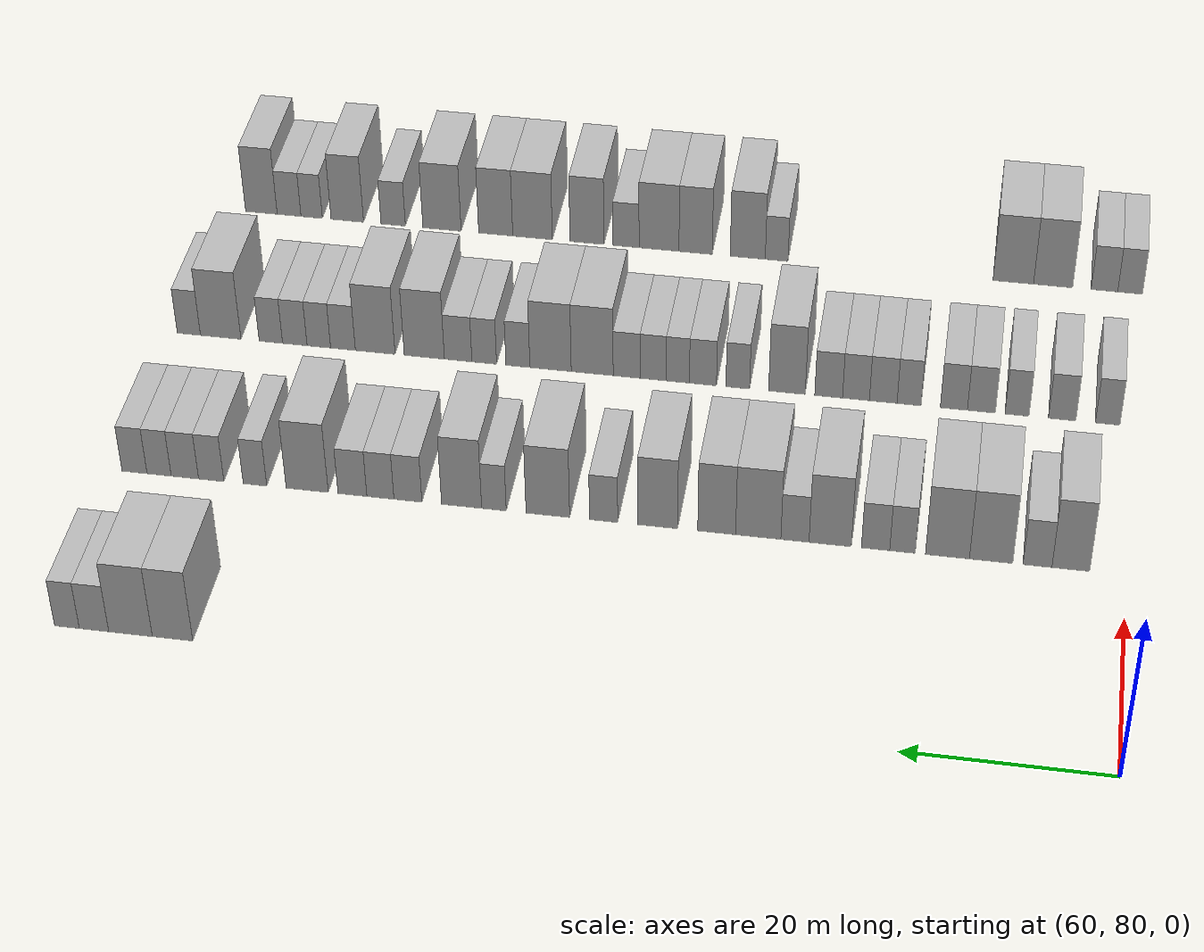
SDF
<sdf version="1.6">
 <world name="default">
  <model name="building_503">
   <static>1</static>
   <pose>69.0000 168.8586 0 0.000000 0.000000 0.000000</pose>
   <link name="link">
    <pose>0 0 4.50 0 0 0</pose>
    <collision name="collision"><geometry><box><size>10.0000 3.9433 9.0000</size></box></geometry></collision>
    <visual name="visual">
     <cast_shadows>0</cast_shadows>
     <geometry><box><size>10.0000 3.9433 9.0000</size></box></geometry>
     <material>
      <script>
       <uri>model://HANNAS_wall/materials/scripts</uri>
       <uri>model://HANNAS_wall/materials/textures</uri>
       <name>vrc/HANNAS_wall</name>
      </script>
     </material>
    </visual>
   </link>
  </model>
  <model name="building_504">
   <static>1</static>
   <pose>69.0000 172.9588 0 0.000000 0.000000 0.000000</pose>
   <link name="link">
    <pose>0 0 4.50 0 0 0</pose>
    <collision name="collision"><geometry><box><size>10.0000 4.2571 9.0000</size></box></geometry></collision>
    <visual name="visual">
     <cast_shadows>0</cast_shadows>
     <geometry><box><size>10.0000 4.2571 9.0000</size></box></geometry>
     <material>
      <script>
       <uri>model://HANNAS_wall/materials/scripts</uri>
       <uri>model://HANNAS_wall/materials/textures</uri>
       <name>vrc/HANNAS_wall</name>
      </script>
     </material>
    </visual>
   </link>
  </model>
  <model name="building_505">
   <static>1</static>
   <pose>69.0000 176.5306 0 0.000000 0.000000 0.000000</pose>
   <link name="link">
    <pose>0 0 3.00 0 0 0</pose>
    <collision name="collision"><geometry><box><size>10.0000 2.8865 6.0000</size></box></geometry></collision>
    <visual name="visual">
     <cast_shadows>0</cast_shadows>
     <geometry><box><size>10.0000 2.8865 6.0000</size></box></geometry>
     <material>
      <script>
       <uri>model://HANNAS_wall/materials/scripts</uri>
       <uri>model://HANNAS_wall/materials/textures</uri>
       <name>vrc/HANNAS_wall</name>
      </script>
     </material>
    </visual>
   </link>
  </model>
  <model name="building_506">
   <static>1</static>
   <pose>69.0000 179.1825 0 0.000000 0.000000 0.000000</pose>
   <link name="link">
    <pose>0 0 3.00 0 0 0</pose>
    <collision name="collision"><geometry><box><size>10.0000 2.4173 6.0000</size></box></geometry></collision>
    <visual name="visual">
     <cast_shadows>0</cast_shadows>
     <geometry><box><size>10.0000 2.4173 6.0000</size></box></geometry>
     <material>
      <script>
       <uri>model://HANNAS_wall/materials/scripts</uri>
       <uri>model://HANNAS_wall/materials/textures</uri>
       <name>vrc/HANNAS_wall</name>
      </script>
     </material>
    </visual>
   </link>
  </model>
  <model name="building_672">
   <static>1</static>
   <pose>91.0000 85.2689 0 0.000000 0.000000 0.000000</pose>
   <link name="link">
    <pose>0 0 4.50 0 0 0</pose>
    <collision name="collision"><geometry><box><size>10.0000 3.6373 9.0000</size></box></geometry></collision>
    <visual name="visual">
     <cast_shadows>0</cast_shadows>
     <geometry><box><size>10.0000 3.6373 9.0000</size></box></geometry>
     <material>
      <script>
       <uri>model://HANNAS_wall/materials/scripts</uri>
       <uri>model://HANNAS_wall/materials/textures</uri>
       <name>vrc/HANNAS_wall</name>
      </script>
     </material>
    </visual>
   </link>
  </model>
  <model name="building_673">
   <static>1</static>
   <pose>91.0000 88.4820 0 0.000000 0.000000 0.000000</pose>
   <link name="link">
    <pose>0 0 3.00 0 0 0</pose>
    <collision name="collision"><geometry><box><size>10.0000 2.7890 6.0000</size></box></geometry></collision>
    <visual name="visual">
     <cast_shadows>0</cast_shadows>
     <geometry><box><size>10.0000 2.7890 6.0000</size></box></geometry>
     <material>
      <script>
       <uri>model://HANNAS_wall/materials/scripts</uri>
       <uri>model://HANNAS_wall/materials/textures</uri>
       <name>vrc/HANNAS_wall</name>
      </script>
     </material>
    </visual>
   </link>
  </model>
  <model name="building_674">
   <static>1</static>
   <pose>91.0000 92.9794 0 0.000000 0.000000 0.000000</pose>
   <link name="link">
    <pose>0 0 4.50 0 0 0</pose>
    <collision name="collision"><geometry><box><size>10.0000 4.2058 9.0000</size></box></geometry></collision>
    <visual name="visual">
     <cast_shadows>0</cast_shadows>
     <geometry><box><size>10.0000 4.2058 9.0000</size></box></geometry>
     <material>
      <script>
       <uri>model://HANNAS_wall/materials/scripts</uri>
       <uri>model://HANNAS_wall/materials/textures</uri>
       <name>vrc/HANNAS_wall</name>
      </script>
     </material>
    </visual>
   </link>
  </model>
  <model name="building_675">
   <static>1</static>
   <pose>91.0000 97.2212 0 0.000000 0.000000 0.000000</pose>
   <link name="link">
    <pose>0 0 4.50 0 0 0</pose>
    <collision name="collision"><geometry><box><size>10.0000 4.2779 9.0000</size></box></geometry></collision>
    <visual name="visual">
     <cast_shadows>0</cast_shadows>
     <geometry><box><size>10.0000 4.2779 9.0000</size></box></geometry>
     <material>
      <script>
       <uri>model://HANNAS_wall/materials/scripts</uri>
       <uri>model://HANNAS_wall/materials/textures</uri>
       <name>vrc/HANNAS_wall</name>
      </script>
     </material>
    </visual>
   </link>
  </model>
  <model name="building_676">
   <static>1</static>
   <pose>91.0000 101.6065 0 0.000000 0.000000 0.000000</pose>
   <link name="link">
    <pose>0 0 3.00 0 0 0</pose>
    <collision name="collision"><geometry><box><size>10.0000 2.4925 6.0000</size></box></geometry></collision>
    <visual name="visual">
     <cast_shadows>0</cast_shadows>
     <geometry><box><size>10.0000 2.4925 6.0000</size></box></geometry>
     <material>
      <script>
       <uri>model://HANNAS_wall/materials/scripts</uri>
       <uri>model://HANNAS_wall/materials/textures</uri>
       <name>vrc/HANNAS_wall</name>
      </script>
     </material>
    </visual>
   </link>
  </model>
  <model name="building_677">
   <static>1</static>
   <pose>91.0000 104.2377 0 0.000000 0.000000 0.000000</pose>
   <link name="link">
    <pose>0 0 3.00 0 0 0</pose>
    <collision name="collision"><geometry><box><size>10.0000 2.7700 6.0000</size></box></geometry></collision>
    <visual name="visual">
     <cast_shadows>0</cast_shadows>
     <geometry><box><size>10.0000 2.7700 6.0000</size></box></geometry>
     <material>
      <script>
       <uri>model://HANNAS_wall/materials/scripts</uri>
       <uri>model://HANNAS_wall/materials/textures</uri>
       <name>vrc/HANNAS_wall</name>
      </script>
     </material>
    </visual>
   </link>
  </model>
  <model name="building_678">
   <static>1</static>
   <pose>91.0000 108.6995 0 0.000000 0.000000 0.000000</pose>
   <link name="link">
    <pose>0 0 4.50 0 0 0</pose>
    <collision name="collision"><geometry><box><size>10.0000 4.1535 9.0000</size></box></geometry></collision>
    <visual name="visual">
     <cast_shadows>0</cast_shadows>
     <geometry><box><size>10.0000 4.1535 9.0000</size></box></geometry>
     <material>
      <script>
       <uri>model://HANNAS_wall/materials/scripts</uri>
       <uri>model://HANNAS_wall/materials/textures</uri>
       <name>vrc/HANNAS_wall</name>
      </script>
     </material>
    </visual>
   </link>
  </model>
  <model name="building_679">
   <static>1</static>
   <pose>91.0000 112.1637 0 0.000000 0.000000 0.000000</pose>
   <link name="link">
    <pose>0 0 3.00 0 0 0</pose>
    <collision name="collision"><geometry><box><size>10.0000 2.7749 6.0000</size></box></geometry></collision>
    <visual name="visual">
     <cast_shadows>0</cast_shadows>
     <geometry><box><size>10.0000 2.7749 6.0000</size></box></geometry>
     <material>
      <script>
       <uri>model://HANNAS_wall/materials/scripts</uri>
       <uri>model://HANNAS_wall/materials/textures</uri>
       <name>vrc/HANNAS_wall</name>
      </script>
     </material>
    </visual>
   </link>
  </model>
  <model name="building_680">
   <static>1</static>
   <pose>91.0000 115.7915 0 0.000000 0.000000 0.000000</pose>
   <link name="link">
    <pose>0 0 4.50 0 0 0</pose>
    <collision name="collision"><geometry><box><size>10.0000 4.4807 9.0000</size></box></geometry></collision>
    <visual name="visual">
     <cast_shadows>0</cast_shadows>
     <geometry><box><size>10.0000 4.4807 9.0000</size></box></geometry>
     <material>
      <script>
       <uri>model://HANNAS_wall/materials/scripts</uri>
       <uri>model://HANNAS_wall/materials/textures</uri>
       <name>vrc/HANNAS_wall</name>
      </script>
     </material>
    </visual>
   </link>
  </model>
  <model name="building_681">
   <static>1</static>
   <pose>91.0000 119.9056 0 0.000000 0.000000 0.000000</pose>
   <link name="link">
    <pose>0 0 4.50 0 0 0</pose>
    <collision name="collision"><geometry><box><size>10.0000 3.7474 9.0000</size></box></geometry></collision>
    <visual name="visual">
     <cast_shadows>0</cast_shadows>
     <geometry><box><size>10.0000 3.7474 9.0000</size></box></geometry>
     <material>
      <script>
       <uri>model://HANNAS_wall/materials/scripts</uri>
       <uri>model://HANNAS_wall/materials/textures</uri>
       <name>vrc/HANNAS_wall</name>
      </script>
     </material>
    </visual>
   </link>
  </model>
  <model name="building_682">
   <static>1</static>
   <pose>91.0000 125.7673 0 0.000000 0.000000 0.000000</pose>
   <link name="link">
    <pose>0 0 4.50 0 0 0</pose>
    <collision name="collision"><geometry><box><size>10.0000 3.9760 9.0000</size></box></geometry></collision>
    <visual name="visual">
     <cast_shadows>0</cast_shadows>
     <geometry><box><size>10.0000 3.9760 9.0000</size></box></geometry>
     <material>
      <script>
       <uri>model://HANNAS_wall/materials/scripts</uri>
       <uri>model://HANNAS_wall/materials/textures</uri>
       <name>vrc/HANNAS_wall</name>
      </script>
     </material>
    </visual>
   </link>
  </model>
  <model name="building_683">
   <static>1</static>
   <pose>91.0000 131.1643 0 0.000000 0.000000 0.000000</pose>
   <link name="link">
    <pose>0 0 3.00 0 0 0</pose>
    <collision name="collision"><geometry><box><size>10.0000 2.8180 6.0000</size></box></geometry></collision>
    <visual name="visual">
     <cast_shadows>0</cast_shadows>
     <geometry><box><size>10.0000 2.8180 6.0000</size></box></geometry>
     <material>
      <script>
       <uri>model://HANNAS_wall/materials/scripts</uri>
       <uri>model://HANNAS_wall/materials/textures</uri>
       <name>vrc/HANNAS_wall</name>
      </script>
     </material>
    </visual>
   </link>
  </model>
  <model name="building_684">
   <static>1</static>
   <pose>91.0000 136.7634 0 0.000000 0.000000 0.000000</pose>
   <link name="link">
    <pose>0 0 4.50 0 0 0</pose>
    <collision name="collision"><geometry><box><size>10.0000 4.3802 9.0000</size></box></geometry></collision>
    <visual name="visual">
     <cast_shadows>0</cast_shadows>
     <geometry><box><size>10.0000 4.3802 9.0000</size></box></geometry>
     <material>
      <script>
       <uri>model://HANNAS_wall/materials/scripts</uri>
       <uri>model://HANNAS_wall/materials/textures</uri>
       <name>vrc/HANNAS_wall</name>
      </script>
     </material>
    </visual>
   </link>
  </model>
  <model name="building_685">
   <static>1</static>
   <pose>91.0000 142.1952 0 0.000000 0.000000 0.000000</pose>
   <link name="link">
    <pose>0 0 3.00 0 0 0</pose>
    <collision name="collision"><geometry><box><size>10.0000 2.4833 6.0000</size></box></geometry></collision>
    <visual name="visual">
     <cast_shadows>0</cast_shadows>
     <geometry><box><size>10.0000 2.4833 6.0000</size></box></geometry>
     <material>
      <script>
       <uri>model://HANNAS_wall/materials/scripts</uri>
       <uri>model://HANNAS_wall/materials/textures</uri>
       <name>vrc/HANNAS_wall</name>
      </script>
     </material>
    </visual>
   </link>
  </model>
  <model name="building_686">
   <static>1</static>
   <pose>91.0000 145.4638 0 0.000000 0.000000 0.000000</pose>
   <link name="link">
    <pose>0 0 4.50 0 0 0</pose>
    <collision name="collision"><geometry><box><size>10.0000 4.0540 9.0000</size></box></geometry></collision>
    <visual name="visual">
     <cast_shadows>0</cast_shadows>
     <geometry><box><size>10.0000 4.0540 9.0000</size></box></geometry>
     <material>
      <script>
       <uri>model://HANNAS_wall/materials/scripts</uri>
       <uri>model://HANNAS_wall/materials/textures</uri>
       <name>vrc/HANNAS_wall</name>
      </script>
     </material>
    </visual>
   </link>
  </model>
  <model name="building_687">
   <static>1</static>
   <pose>91.0000 150.9157 0 0.000000 0.000000 0.000000</pose>
   <link name="link">
    <pose>0 0 3.00 0 0 0</pose>
    <collision name="collision"><geometry><box><size>10.0000 2.8497 6.0000</size></box></geometry></collision>
    <visual name="visual">
     <cast_shadows>0</cast_shadows>
     <geometry><box><size>10.0000 2.8497 6.0000</size></box></geometry>
     <material>
      <script>
       <uri>model://HANNAS_wall/materials/scripts</uri>
       <uri>model://HANNAS_wall/materials/textures</uri>
       <name>vrc/HANNAS_wall</name>
      </script>
     </material>
    </visual>
   </link>
  </model>
  <model name="building_688">
   <static>1</static>
   <pose>91.0000 153.7199 0 0.000000 0.000000 0.000000</pose>
   <link name="link">
    <pose>0 0 3.00 0 0 0</pose>
    <collision name="collision"><geometry><box><size>10.0000 2.7587 6.0000</size></box></geometry></collision>
    <visual name="visual">
     <cast_shadows>0</cast_shadows>
     <geometry><box><size>10.0000 2.7587 6.0000</size></box></geometry>
     <material>
      <script>
       <uri>model://HANNAS_wall/materials/scripts</uri>
       <uri>model://HANNAS_wall/materials/textures</uri>
       <name>vrc/HANNAS_wall</name>
      </script>
     </material>
    </visual>
   </link>
  </model>
  <model name="building_689">
   <static>1</static>
   <pose>91.0000 156.5724 0 0.000000 0.000000 0.000000</pose>
   <link name="link">
    <pose>0 0 3.00 0 0 0</pose>
    <collision name="collision"><geometry><box><size>10.0000 2.9464 6.0000</size></box></geometry></collision>
    <visual name="visual">
     <cast_shadows>0</cast_shadows>
     <geometry><box><size>10.0000 2.9464 6.0000</size></box></geometry>
     <material>
      <script>
       <uri>model://HANNAS_wall/materials/scripts</uri>
       <uri>model://HANNAS_wall/materials/textures</uri>
       <name>vrc/HANNAS_wall</name>
      </script>
     </material>
    </visual>
   </link>
  </model>
  <model name="building_690">
   <static>1</static>
   <pose>91.0000 161.2050 0 0.000000 0.000000 0.000000</pose>
   <link name="link">
    <pose>0 0 4.50 0 0 0</pose>
    <collision name="collision"><geometry><box><size>10.0000 4.3189 9.0000</size></box></geometry></collision>
    <visual name="visual">
     <cast_shadows>0</cast_shadows>
     <geometry><box><size>10.0000 4.3189 9.0000</size></box></geometry>
     <material>
      <script>
       <uri>model://HANNAS_wall/materials/scripts</uri>
       <uri>model://HANNAS_wall/materials/textures</uri>
       <name>vrc/HANNAS_wall</name>
      </script>
     </material>
    </visual>
   </link>
  </model>
  <model name="building_691">
   <static>1</static>
   <pose>91.0000 166.5758 0 0.000000 0.000000 0.000000</pose>
   <link name="link">
    <pose>0 0 3.00 0 0 0</pose>
    <collision name="collision"><geometry><box><size>10.0000 2.4225 6.0000</size></box></geometry></collision>
    <visual name="visual">
     <cast_shadows>0</cast_shadows>
     <geometry><box><size>10.0000 2.4225 6.0000</size></box></geometry>
     <material>
      <script>
       <uri>model://HANNAS_wall/materials/scripts</uri>
       <uri>model://HANNAS_wall/materials/textures</uri>
       <name>vrc/HANNAS_wall</name>
      </script>
     </material>
    </visual>
   </link>
  </model>
  <model name="building_692">
   <static>1</static>
   <pose>91.0000 171.0975 0 0.000000 0.000000 0.000000</pose>
   <link name="link">
    <pose>0 0 3.00 0 0 0</pose>
    <collision name="collision"><geometry><box><size>10.0000 2.6209 6.0000</size></box></geometry></collision>
    <visual name="visual">
     <cast_shadows>0</cast_shadows>
     <geometry><box><size>10.0000 2.6209 6.0000</size></box></geometry>
     <material>
      <script>
       <uri>model://HANNAS_wall/materials/scripts</uri>
       <uri>model://HANNAS_wall/materials/textures</uri>
       <name>vrc/HANNAS_wall</name>
      </script>
     </material>
    </visual>
   </link>
  </model>
  <model name="building_693">
   <static>1</static>
   <pose>91.0000 173.8253 0 0.000000 0.000000 0.000000</pose>
   <link name="link">
    <pose>0 0 3.00 0 0 0</pose>
    <collision name="collision"><geometry><box><size>10.0000 2.8348 6.0000</size></box></geometry></collision>
    <visual name="visual">
     <cast_shadows>0</cast_shadows>
     <geometry><box><size>10.0000 2.8348 6.0000</size></box></geometry>
     <material>
      <script>
       <uri>model://HANNAS_wall/materials/scripts</uri>
       <uri>model://HANNAS_wall/materials/textures</uri>
       <name>vrc/HANNAS_wall</name>
      </script>
     </material>
    </visual>
   </link>
  </model>
  <model name="building_694">
   <static>1</static>
   <pose>91.0000 176.4981 0 0.000000 0.000000 0.000000</pose>
   <link name="link">
    <pose>0 0 3.00 0 0 0</pose>
    <collision name="collision"><geometry><box><size>10.0000 2.5108 6.0000</size></box></geometry></collision>
    <visual name="visual">
     <cast_shadows>0</cast_shadows>
     <geometry><box><size>10.0000 2.5108 6.0000</size></box></geometry>
     <material>
      <script>
       <uri>model://HANNAS_wall/materials/scripts</uri>
       <uri>model://HANNAS_wall/materials/textures</uri>
       <name>vrc/HANNAS_wall</name>
      </script>
     </material>
    </visual>
   </link>
  </model>
  <model name="building_695">
   <static>1</static>
   <pose>91.0000 179.0487 0 0.000000 0.000000 0.000000</pose>
   <link name="link">
    <pose>0 0 3.00 0 0 0</pose>
    <collision name="collision"><geometry><box><size>10.0000 2.5904 6.0000</size></box></geometry></collision>
    <visual name="visual">
     <cast_shadows>0</cast_shadows>
     <geometry><box><size>10.0000 2.5904 6.0000</size></box></geometry>
     <material>
      <script>
       <uri>model://HANNAS_wall/materials/scripts</uri>
       <uri>model://HANNAS_wall/materials/textures</uri>
       <name>vrc/HANNAS_wall</name>
      </script>
     </material>
    </visual>
   </link>
  </model>
  <model name="building_865">
   <static>1</static>
   <pose>113.0000 82.2273 0 0.000000 0.000000 0.000000</pose>
   <link name="link">
    <pose>0 0 3.00 0 0 0</pose>
    <collision name="collision"><geometry><box><size>10.0000 2.4982 6.0000</size></box></geometry></collision>
    <visual name="visual">
     <cast_shadows>0</cast_shadows>
     <geometry><box><size>10.0000 2.4982 6.0000</size></box></geometry>
     <material>
      <script>
       <uri>model://HANNAS_wall/materials/scripts</uri>
       <uri>model://HANNAS_wall/materials/textures</uri>
       <name>vrc/HANNAS_wall</name>
      </script>
     </material>
    </visual>
   </link>
  </model>
  <model name="building_866">
   <static>1</static>
   <pose>113.0000 86.8775 0 0.000000 0.000000 0.000000</pose>
   <link name="link">
    <pose>0 0 3.00 0 0 0</pose>
    <collision name="collision"><geometry><box><size>10.0000 2.8022 6.0000</size></box></geometry></collision>
    <visual name="visual">
     <cast_shadows>0</cast_shadows>
     <geometry><box><size>10.0000 2.8022 6.0000</size></box></geometry>
     <material>
      <script>
       <uri>model://HANNAS_wall/materials/scripts</uri>
       <uri>model://HANNAS_wall/materials/textures</uri>
       <name>vrc/HANNAS_wall</name>
      </script>
     </material>
    </visual>
   </link>
  </model>
  <model name="building_867">
   <static>1</static>
   <pose>113.0000 91.5079 0 0.000000 0.000000 0.000000</pose>
   <link name="link">
    <pose>0 0 3.00 0 0 0</pose>
    <collision name="collision"><geometry><box><size>10.0000 2.4586 6.0000</size></box></geometry></collision>
    <visual name="visual">
     <cast_shadows>0</cast_shadows>
     <geometry><box><size>10.0000 2.4586 6.0000</size></box></geometry>
     <material>
      <script>
       <uri>model://HANNAS_wall/materials/scripts</uri>
       <uri>model://HANNAS_wall/materials/textures</uri>
       <name>vrc/HANNAS_wall</name>
      </script>
     </material>
    </visual>
   </link>
  </model>
  <model name="building_868">
   <static>1</static>
   <pose>113.0000 95.1798 0 0.000000 0.000000 0.000000</pose>
   <link name="link">
    <pose>0 0 3.00 0 0 0</pose>
    <collision name="collision"><geometry><box><size>10.0000 2.8854 6.0000</size></box></geometry></collision>
    <visual name="visual">
     <cast_shadows>0</cast_shadows>
     <geometry><box><size>10.0000 2.8854 6.0000</size></box></geometry>
     <material>
      <script>
       <uri>model://HANNAS_wall/materials/scripts</uri>
       <uri>model://HANNAS_wall/materials/textures</uri>
       <name>vrc/HANNAS_wall</name>
      </script>
     </material>
    </visual>
   </link>
  </model>
  <model name="building_869">
   <static>1</static>
   <pose>113.0000 98.0189 0 0.000000 0.000000 0.000000</pose>
   <link name="link">
    <pose>0 0 3.00 0 0 0</pose>
    <collision name="collision"><geometry><box><size>10.0000 2.7927 6.0000</size></box></geometry></collision>
    <visual name="visual">
     <cast_shadows>0</cast_shadows>
     <geometry><box><size>10.0000 2.7927 6.0000</size></box></geometry>
     <material>
      <script>
       <uri>model://HANNAS_wall/materials/scripts</uri>
       <uri>model://HANNAS_wall/materials/textures</uri>
       <name>vrc/HANNAS_wall</name>
      </script>
     </material>
    </visual>
   </link>
  </model>
  <model name="building_870">
   <static>1</static>
   <pose>113.0000 102.6590 0 0.000000 0.000000 0.000000</pose>
   <link name="link">
    <pose>0 0 3.00 0 0 0</pose>
    <collision name="collision"><geometry><box><size>10.0000 2.4874 6.0000</size></box></geometry></collision>
    <visual name="visual">
     <cast_shadows>0</cast_shadows>
     <geometry><box><size>10.0000 2.4874 6.0000</size></box></geometry>
     <material>
      <script>
       <uri>model://HANNAS_wall/materials/scripts</uri>
       <uri>model://HANNAS_wall/materials/textures</uri>
       <name>vrc/HANNAS_wall</name>
      </script>
     </material>
    </visual>
   </link>
  </model>
  <model name="building_871">
   <static>1</static>
   <pose>113.0000 105.3370 0 0.000000 0.000000 0.000000</pose>
   <link name="link">
    <pose>0 0 3.00 0 0 0</pose>
    <collision name="collision"><geometry><box><size>10.0000 2.8686 6.0000</size></box></geometry></collision>
    <visual name="visual">
     <cast_shadows>0</cast_shadows>
     <geometry><box><size>10.0000 2.8686 6.0000</size></box></geometry>
     <material>
      <script>
       <uri>model://HANNAS_wall/materials/scripts</uri>
       <uri>model://HANNAS_wall/materials/textures</uri>
       <name>vrc/HANNAS_wall</name>
      </script>
     </material>
    </visual>
   </link>
  </model>
  <model name="building_872">
   <static>1</static>
   <pose>113.0000 108.1719 0 0.000000 0.000000 0.000000</pose>
   <link name="link">
    <pose>0 0 3.00 0 0 0</pose>
    <collision name="collision"><geometry><box><size>10.0000 2.8012 6.0000</size></box></geometry></collision>
    <visual name="visual">
     <cast_shadows>0</cast_shadows>
     <geometry><box><size>10.0000 2.8012 6.0000</size></box></geometry>
     <material>
      <script>
       <uri>model://HANNAS_wall/materials/scripts</uri>
       <uri>model://HANNAS_wall/materials/textures</uri>
       <name>vrc/HANNAS_wall</name>
      </script>
     </material>
    </visual>
   </link>
  </model>
  <model name="building_873">
   <static>1</static>
   <pose>113.0000 111.0192 0 0.000000 0.000000 0.000000</pose>
   <link name="link">
    <pose>0 0 3.00 0 0 0</pose>
    <collision name="collision"><geometry><box><size>10.0000 2.8933 6.0000</size></box></geometry></collision>
    <visual name="visual">
     <cast_shadows>0</cast_shadows>
     <geometry><box><size>10.0000 2.8933 6.0000</size></box></geometry>
     <material>
      <script>
       <uri>model://HANNAS_wall/materials/scripts</uri>
       <uri>model://HANNAS_wall/materials/textures</uri>
       <name>vrc/HANNAS_wall</name>
      </script>
     </material>
    </visual>
   </link>
  </model>
  <model name="building_874">
   <static>1</static>
   <pose>113.0000 115.3780 0 0.000000 0.000000 0.000000</pose>
   <link name="link">
    <pose>0 0 4.50 0 0 0</pose>
    <collision name="collision"><geometry><box><size>10.0000 3.8243 9.0000</size></box></geometry></collision>
    <visual name="visual">
     <cast_shadows>0</cast_shadows>
     <geometry><box><size>10.0000 3.8243 9.0000</size></box></geometry>
     <material>
      <script>
       <uri>model://HANNAS_wall/materials/scripts</uri>
       <uri>model://HANNAS_wall/materials/textures</uri>
       <name>vrc/HANNAS_wall</name>
      </script>
     </material>
    </visual>
   </link>
  </model>
  <model name="building_875">
   <static>1</static>
   <pose>113.0000 120.5338 0 0.000000 0.000000 0.000000</pose>
   <link name="link">
    <pose>0 0 3.00 0 0 0</pose>
    <collision name="collision"><geometry><box><size>10.0000 2.4874 6.0000</size></box></geometry></collision>
    <visual name="visual">
     <cast_shadows>0</cast_shadows>
     <geometry><box><size>10.0000 2.4874 6.0000</size></box></geometry>
     <material>
      <script>
       <uri>model://HANNAS_wall/materials/scripts</uri>
       <uri>model://HANNAS_wall/materials/textures</uri>
       <name>vrc/HANNAS_wall</name>
      </script>
     </material>
    </visual>
   </link>
  </model>
  <model name="building_876">
   <static>1</static>
   <pose>113.0000 124.2019 0 0.000000 0.000000 0.000000</pose>
   <link name="link">
    <pose>0 0 3.00 0 0 0</pose>
    <collision name="collision"><geometry><box><size>10.0000 2.8487 6.0000</size></box></geometry></collision>
    <visual name="visual">
     <cast_shadows>0</cast_shadows>
     <geometry><box><size>10.0000 2.8487 6.0000</size></box></geometry>
     <material>
      <script>
       <uri>model://HANNAS_wall/materials/scripts</uri>
       <uri>model://HANNAS_wall/materials/textures</uri>
       <name>vrc/HANNAS_wall</name>
      </script>
     </material>
    </visual>
   </link>
  </model>
  <model name="building_877">
   <static>1</static>
   <pose>113.0000 126.8494 0 0.000000 0.000000 0.000000</pose>
   <link name="link">
    <pose>0 0 3.00 0 0 0</pose>
    <collision name="collision"><geometry><box><size>10.0000 2.4463 6.0000</size></box></geometry></collision>
    <visual name="visual">
     <cast_shadows>0</cast_shadows>
     <geometry><box><size>10.0000 2.4463 6.0000</size></box></geometry>
     <material>
      <script>
       <uri>model://HANNAS_wall/materials/scripts</uri>
       <uri>model://HANNAS_wall/materials/textures</uri>
       <name>vrc/HANNAS_wall</name>
      </script>
     </material>
    </visual>
   </link>
  </model>
  <model name="building_878">
   <static>1</static>
   <pose>113.0000 129.4584 0 0.000000 0.000000 0.000000</pose>
   <link name="link">
    <pose>0 0 3.00 0 0 0</pose>
    <collision name="collision"><geometry><box><size>10.0000 2.7718 6.0000</size></box></geometry></collision>
    <visual name="visual">
     <cast_shadows>0</cast_shadows>
     <geometry><box><size>10.0000 2.7718 6.0000</size></box></geometry>
     <material>
      <script>
       <uri>model://HANNAS_wall/materials/scripts</uri>
       <uri>model://HANNAS_wall/materials/textures</uri>
       <name>vrc/HANNAS_wall</name>
      </script>
     </material>
    </visual>
   </link>
  </model>
  <model name="building_879">
   <static>1</static>
   <pose>113.0000 132.2677 0 0.000000 0.000000 0.000000</pose>
   <link name="link">
    <pose>0 0 3.00 0 0 0</pose>
    <collision name="collision"><geometry><box><size>10.0000 2.8469 6.0000</size></box></geometry></collision>
    <visual name="visual">
     <cast_shadows>0</cast_shadows>
     <geometry><box><size>10.0000 2.8469 6.0000</size></box></geometry>
     <material>
      <script>
       <uri>model://HANNAS_wall/materials/scripts</uri>
       <uri>model://HANNAS_wall/materials/textures</uri>
       <name>vrc/HANNAS_wall</name>
      </script>
     </material>
    </visual>
   </link>
  </model>
  <model name="building_880">
   <static>1</static>
   <pose>113.0000 135.9219 0 0.000000 0.000000 0.000000</pose>
   <link name="link">
    <pose>0 0 4.50 0 0 0</pose>
    <collision name="collision"><geometry><box><size>10.0000 4.4615 9.0000</size></box></geometry></collision>
    <visual name="visual">
     <cast_shadows>0</cast_shadows>
     <geometry><box><size>10.0000 4.4615 9.0000</size></box></geometry>
     <material>
      <script>
       <uri>model://HANNAS_wall/materials/scripts</uri>
       <uri>model://HANNAS_wall/materials/textures</uri>
       <name>vrc/HANNAS_wall</name>
      </script>
     </material>
    </visual>
   </link>
  </model>
  <model name="building_881">
   <static>1</static>
   <pose>113.0000 140.3602 0 0.000000 0.000000 0.000000</pose>
   <link name="link">
    <pose>0 0 4.50 0 0 0</pose>
    <collision name="collision"><geometry><box><size>10.0000 4.4151 9.0000</size></box></geometry></collision>
    <visual name="visual">
     <cast_shadows>0</cast_shadows>
     <geometry><box><size>10.0000 4.4151 9.0000</size></box></geometry>
     <material>
      <script>
       <uri>model://HANNAS_wall/materials/scripts</uri>
       <uri>model://HANNAS_wall/materials/textures</uri>
       <name>vrc/HANNAS_wall</name>
      </script>
     </material>
    </visual>
   </link>
  </model>
  <model name="building_882">
   <static>1</static>
   <pose>113.0000 143.8496 0 0.000000 0.000000 0.000000</pose>
   <link name="link">
    <pose>0 0 3.00 0 0 0</pose>
    <collision name="collision"><geometry><box><size>10.0000 2.5637 6.0000</size></box></geometry></collision>
    <visual name="visual">
     <cast_shadows>0</cast_shadows>
     <geometry><box><size>10.0000 2.5637 6.0000</size></box></geometry>
     <material>
      <script>
       <uri>model://HANNAS_wall/materials/scripts</uri>
       <uri>model://HANNAS_wall/materials/textures</uri>
       <name>vrc/HANNAS_wall</name>
      </script>
     </material>
    </visual>
   </link>
  </model>
  <model name="building_883">
   <static>1</static>
   <pose>113.0000 147.4562 0 0.000000 0.000000 0.000000</pose>
   <link name="link">
    <pose>0 0 3.00 0 0 0</pose>
    <collision name="collision"><geometry><box><size>10.0000 2.6494 6.0000</size></box></geometry></collision>
    <visual name="visual">
     <cast_shadows>0</cast_shadows>
     <geometry><box><size>10.0000 2.6494 6.0000</size></box></geometry>
     <material>
      <script>
       <uri>model://HANNAS_wall/materials/scripts</uri>
       <uri>model://HANNAS_wall/materials/textures</uri>
       <name>vrc/HANNAS_wall</name>
      </script>
     </material>
    </visual>
   </link>
  </model>
  <model name="building_884">
   <static>1</static>
   <pose>113.0000 150.2595 0 0.000000 0.000000 0.000000</pose>
   <link name="link">
    <pose>0 0 3.00 0 0 0</pose>
    <collision name="collision"><geometry><box><size>10.0000 2.9571 6.0000</size></box></geometry></collision>
    <visual name="visual">
     <cast_shadows>0</cast_shadows>
     <geometry><box><size>10.0000 2.9571 6.0000</size></box></geometry>
     <material>
      <script>
       <uri>model://HANNAS_wall/materials/scripts</uri>
       <uri>model://HANNAS_wall/materials/textures</uri>
       <name>vrc/HANNAS_wall</name>
      </script>
     </material>
    </visual>
   </link>
  </model>
  <model name="building_885">
   <static>1</static>
   <pose>113.0000 153.9027 0 0.000000 0.000000 0.000000</pose>
   <link name="link">
    <pose>0 0 4.50 0 0 0</pose>
    <collision name="collision"><geometry><box><size>10.0000 4.3293 9.0000</size></box></geometry></collision>
    <visual name="visual">
     <cast_shadows>0</cast_shadows>
     <geometry><box><size>10.0000 4.3293 9.0000</size></box></geometry>
     <material>
      <script>
       <uri>model://HANNAS_wall/materials/scripts</uri>
       <uri>model://HANNAS_wall/materials/textures</uri>
       <name>vrc/HANNAS_wall</name>
      </script>
     </material>
    </visual>
   </link>
  </model>
  <model name="building_886">
   <static>1</static>
   <pose>113.0000 159.2150 0 0.000000 0.000000 0.000000</pose>
   <link name="link">
    <pose>0 0 4.50 0 0 0</pose>
    <collision name="collision"><geometry><box><size>10.0000 4.2955 9.0000</size></box></geometry></collision>
    <visual name="visual">
     <cast_shadows>0</cast_shadows>
     <geometry><box><size>10.0000 4.2955 9.0000</size></box></geometry>
     <material>
      <script>
       <uri>model://HANNAS_wall/materials/scripts</uri>
       <uri>model://HANNAS_wall/materials/textures</uri>
       <name>vrc/HANNAS_wall</name>
      </script>
     </material>
    </visual>
   </link>
  </model>
  <model name="building_887">
   <static>1</static>
   <pose>113.0000 162.7065 0 0.000000 0.000000 0.000000</pose>
   <link name="link">
    <pose>0 0 3.00 0 0 0</pose>
    <collision name="collision"><geometry><box><size>10.0000 2.6875 6.0000</size></box></geometry></collision>
    <visual name="visual">
     <cast_shadows>0</cast_shadows>
     <geometry><box><size>10.0000 2.6875 6.0000</size></box></geometry>
     <material>
      <script>
       <uri>model://HANNAS_wall/materials/scripts</uri>
       <uri>model://HANNAS_wall/materials/textures</uri>
       <name>vrc/HANNAS_wall</name>
      </script>
     </material>
    </visual>
   </link>
  </model>
  <model name="building_888">
   <static>1</static>
   <pose>113.0000 165.3302 0 0.000000 0.000000 0.000000</pose>
   <link name="link">
    <pose>0 0 3.00 0 0 0</pose>
    <collision name="collision"><geometry><box><size>10.0000 2.5597 6.0000</size></box></geometry></collision>
    <visual name="visual">
     <cast_shadows>0</cast_shadows>
     <geometry><box><size>10.0000 2.5597 6.0000</size></box></geometry>
     <material>
      <script>
       <uri>model://HANNAS_wall/materials/scripts</uri>
       <uri>model://HANNAS_wall/materials/textures</uri>
       <name>vrc/HANNAS_wall</name>
      </script>
     </material>
    </visual>
   </link>
  </model>
  <model name="building_889">
   <static>1</static>
   <pose>113.0000 167.9452 0 0.000000 0.000000 0.000000</pose>
   <link name="link">
    <pose>0 0 3.00 0 0 0</pose>
    <collision name="collision"><geometry><box><size>10.0000 2.6704 6.0000</size></box></geometry></collision>
    <visual name="visual">
     <cast_shadows>0</cast_shadows>
     <geometry><box><size>10.0000 2.6704 6.0000</size></box></geometry>
     <material>
      <script>
       <uri>model://HANNAS_wall/materials/scripts</uri>
       <uri>model://HANNAS_wall/materials/textures</uri>
       <name>vrc/HANNAS_wall</name>
      </script>
     </material>
    </visual>
   </link>
  </model>
  <model name="building_890">
   <static>1</static>
   <pose>113.0000 170.5580 0 0.000000 0.000000 0.000000</pose>
   <link name="link">
    <pose>0 0 3.00 0 0 0</pose>
    <collision name="collision"><geometry><box><size>10.0000 2.5551 6.0000</size></box></geometry></collision>
    <visual name="visual">
     <cast_shadows>0</cast_shadows>
     <geometry><box><size>10.0000 2.5551 6.0000</size></box></geometry>
     <material>
      <script>
       <uri>model://HANNAS_wall/materials/scripts</uri>
       <uri>model://HANNAS_wall/materials/textures</uri>
       <name>vrc/HANNAS_wall</name>
      </script>
     </material>
    </visual>
   </link>
  </model>
  <model name="building_891">
   <static>1</static>
   <pose>113.0000 176.0569 0 0.000000 0.000000 0.000000</pose>
   <link name="link">
    <pose>0 0 4.50 0 0 0</pose>
    <collision name="collision"><geometry><box><size>10.0000 4.4427 9.0000</size></box></geometry></collision>
    <visual name="visual">
     <cast_shadows>0</cast_shadows>
     <geometry><box><size>10.0000 4.4427 9.0000</size></box></geometry>
     <material>
      <script>
       <uri>model://HANNAS_wall/materials/scripts</uri>
       <uri>model://HANNAS_wall/materials/textures</uri>
       <name>vrc/HANNAS_wall</name>
      </script>
     </material>
    </visual>
   </link>
  </model>
  <model name="building_892">
   <static>1</static>
   <pose>113.0000 179.5502 0 0.000000 0.000000 0.000000</pose>
   <link name="link">
    <pose>0 0 3.00 0 0 0</pose>
    <collision name="collision"><geometry><box><size>10.0000 2.5439 6.0000</size></box></geometry></collision>
    <visual name="visual">
     <cast_shadows>0</cast_shadows>
     <geometry><box><size>10.0000 2.5439 6.0000</size></box></geometry>
     <material>
      <script>
       <uri>model://HANNAS_wall/materials/scripts</uri>
       <uri>model://HANNAS_wall/materials/textures</uri>
       <name>vrc/HANNAS_wall</name>
      </script>
     </material>
    </visual>
   </link>
  </model>
  <model name="building_1050">
   <static>1</static>
   <pose>135.0000 80.3225 0 0.000000 0.000000 0.000000</pose>
   <link name="link">
    <pose>0 0 3.00 0 0 0</pose>
    <collision name="collision"><geometry><box><size>10.0000 2.6673 6.0000</size></box></geometry></collision>
    <visual name="visual">
     <cast_shadows>0</cast_shadows>
     <geometry><box><size>10.0000 2.6673 6.0000</size></box></geometry>
     <material>
      <script>
       <uri>model://HANNAS_wall/materials/scripts</uri>
       <uri>model://HANNAS_wall/materials/textures</uri>
       <name>vrc/HANNAS_wall</name>
      </script>
     </material>
    </visual>
   </link>
  </model>
  <model name="building_1051">
   <static>1</static>
   <pose>135.0000 83.0879 0 0.000000 0.000000 0.000000</pose>
   <link name="link">
    <pose>0 0 3.00 0 0 0</pose>
    <collision name="collision"><geometry><box><size>10.0000 2.8635 6.0000</size></box></geometry></collision>
    <visual name="visual">
     <cast_shadows>0</cast_shadows>
     <geometry><box><size>10.0000 2.8635 6.0000</size></box></geometry>
     <material>
      <script>
       <uri>model://HANNAS_wall/materials/scripts</uri>
       <uri>model://HANNAS_wall/materials/textures</uri>
       <name>vrc/HANNAS_wall</name>
      </script>
     </material>
    </visual>
   </link>
  </model>
  <model name="building_1052">
   <static>1</static>
   <pose>135.0000 88.6421 0 0.000000 0.000000 0.000000</pose>
   <link name="link">
    <pose>0 0 4.50 0 0 0</pose>
    <collision name="collision"><geometry><box><size>10.0000 4.2449 9.0000</size></box></geometry></collision>
    <visual name="visual">
     <cast_shadows>0</cast_shadows>
     <geometry><box><size>10.0000 4.2449 9.0000</size></box></geometry>
     <material>
      <script>
       <uri>model://HANNAS_wall/materials/scripts</uri>
       <uri>model://HANNAS_wall/materials/textures</uri>
       <name>vrc/HANNAS_wall</name>
      </script>
     </material>
    </visual>
   </link>
  </model>
  <model name="building_1053">
   <static>1</static>
   <pose>135.0000 92.9642 0 0.000000 0.000000 0.000000</pose>
   <link name="link">
    <pose>0 0 4.50 0 0 0</pose>
    <collision name="collision"><geometry><box><size>10.0000 4.3993 9.0000</size></box></geometry></collision>
    <visual name="visual">
     <cast_shadows>0</cast_shadows>
     <geometry><box><size>10.0000 4.3993 9.0000</size></box></geometry>
     <material>
      <script>
       <uri>model://HANNAS_wall/materials/scripts</uri>
       <uri>model://HANNAS_wall/materials/textures</uri>
       <name>vrc/HANNAS_wall</name>
      </script>
     </material>
    </visual>
   </link>
  </model>
  <model name="building_1054">
   <static>1</static>
   <pose>135.0000 118.9480 0 0.000000 0.000000 0.000000</pose>
   <link name="link">
    <pose>0 0 3.00 0 0 0</pose>
    <collision name="collision"><geometry><box><size>10.0000 2.5228 6.0000</size></box></geometry></collision>
    <visual name="visual">
     <cast_shadows>0</cast_shadows>
     <geometry><box><size>10.0000 2.5228 6.0000</size></box></geometry>
     <material>
      <script>
       <uri>model://HANNAS_wall/materials/scripts</uri>
       <uri>model://HANNAS_wall/materials/textures</uri>
       <name>vrc/HANNAS_wall</name>
      </script>
     </material>
    </visual>
   </link>
  </model>
  <model name="building_1055">
   <static>1</static>
   <pose>135.0000 122.1570 0 0.000000 0.000000 0.000000</pose>
   <link name="link">
    <pose>0 0 4.50 0 0 0</pose>
    <collision name="collision"><geometry><box><size>10.0000 3.8951 9.0000</size></box></geometry></collision>
    <visual name="visual">
     <cast_shadows>0</cast_shadows>
     <geometry><box><size>10.0000 3.8951 9.0000</size></box></geometry>
     <material>
      <script>
       <uri>model://HANNAS_wall/materials/scripts</uri>
       <uri>model://HANNAS_wall/materials/textures</uri>
       <name>vrc/HANNAS_wall</name>
      </script>
     </material>
    </visual>
   </link>
  </model>
  <model name="building_1056">
   <static>1</static>
   <pose>135.0000 127.9598 0 0.000000 0.000000 0.000000</pose>
   <link name="link">
    <pose>0 0 4.50 0 0 0</pose>
    <collision name="collision"><geometry><box><size>10.0000 3.7104 9.0000</size></box></geometry></collision>
    <visual name="visual">
     <cast_shadows>0</cast_shadows>
     <geometry><box><size>10.0000 3.7104 9.0000</size></box></geometry>
     <material>
      <script>
       <uri>model://HANNAS_wall/materials/scripts</uri>
       <uri>model://HANNAS_wall/materials/textures</uri>
       <name>vrc/HANNAS_wall</name>
      </script>
     </material>
    </visual>
   </link>
  </model>
  <model name="building_1057">
   <static>1</static>
   <pose>135.0000 132.0480 0 0.000000 0.000000 0.000000</pose>
   <link name="link">
    <pose>0 0 4.50 0 0 0</pose>
    <collision name="collision"><geometry><box><size>10.0000 4.4661 9.0000</size></box></geometry></collision>
    <visual name="visual">
     <cast_shadows>0</cast_shadows>
     <geometry><box><size>10.0000 4.4661 9.0000</size></box></geometry>
     <material>
      <script>
       <uri>model://HANNAS_wall/materials/scripts</uri>
       <uri>model://HANNAS_wall/materials/textures</uri>
       <name>vrc/HANNAS_wall</name>
      </script>
     </material>
    </visual>
   </link>
  </model>
  <model name="building_1058">
   <static>1</static>
   <pose>135.0000 135.7466 0 0.000000 0.000000 0.000000</pose>
   <link name="link">
    <pose>0 0 3.00 0 0 0</pose>
    <collision name="collision"><geometry><box><size>10.0000 2.9311 6.0000</size></box></geometry></collision>
    <visual name="visual">
     <cast_shadows>0</cast_shadows>
     <geometry><box><size>10.0000 2.9311 6.0000</size></box></geometry>
     <material>
      <script>
       <uri>model://HANNAS_wall/materials/scripts</uri>
       <uri>model://HANNAS_wall/materials/textures</uri>
       <name>vrc/HANNAS_wall</name>
      </script>
     </material>
    </visual>
   </link>
  </model>
  <model name="building_1059">
   <static>1</static>
   <pose>135.0000 140.1201 0 0.000000 0.000000 0.000000</pose>
   <link name="link">
    <pose>0 0 4.50 0 0 0</pose>
    <collision name="collision"><geometry><box><size>10.0000 3.8158 9.0000</size></box></geometry></collision>
    <visual name="visual">
     <cast_shadows>0</cast_shadows>
     <geometry><box><size>10.0000 3.8158 9.0000</size></box></geometry>
     <material>
      <script>
       <uri>model://HANNAS_wall/materials/scripts</uri>
       <uri>model://HANNAS_wall/materials/textures</uri>
       <name>vrc/HANNAS_wall</name>
      </script>
     </material>
    </visual>
   </link>
  </model>
  <model name="building_1060">
   <static>1</static>
   <pose>135.0000 146.2678 0 0.000000 0.000000 0.000000</pose>
   <link name="link">
    <pose>0 0 4.50 0 0 0</pose>
    <collision name="collision"><geometry><box><size>10.0000 4.4797 9.0000</size></box></geometry></collision>
    <visual name="visual">
     <cast_shadows>0</cast_shadows>
     <geometry><box><size>10.0000 4.4797 9.0000</size></box></geometry>
     <material>
      <script>
       <uri>model://HANNAS_wall/materials/scripts</uri>
       <uri>model://HANNAS_wall/materials/textures</uri>
       <name>vrc/HANNAS_wall</name>
      </script>
     </material>
    </visual>
   </link>
  </model>
  <model name="building_1061">
   <static>1</static>
   <pose>135.0000 150.4375 0 0.000000 0.000000 0.000000</pose>
   <link name="link">
    <pose>0 0 4.50 0 0 0</pose>
    <collision name="collision"><geometry><box><size>10.0000 3.8596 9.0000</size></box></geometry></collision>
    <visual name="visual">
     <cast_shadows>0</cast_shadows>
     <geometry><box><size>10.0000 3.8596 9.0000</size></box></geometry>
     <material>
      <script>
       <uri>model://HANNAS_wall/materials/scripts</uri>
       <uri>model://HANNAS_wall/materials/textures</uri>
       <name>vrc/HANNAS_wall</name>
      </script>
     </material>
    </visual>
   </link>
  </model>
  <model name="building_1062">
   <static>1</static>
   <pose>135.0000 156.5423 0 0.000000 0.000000 0.000000</pose>
   <link name="link">
    <pose>0 0 4.50 0 0 0</pose>
    <collision name="collision"><geometry><box><size>10.0000 4.3502 9.0000</size></box></geometry></collision>
    <visual name="visual">
     <cast_shadows>0</cast_shadows>
     <geometry><box><size>10.0000 4.3502 9.0000</size></box></geometry>
     <material>
      <script>
       <uri>model://HANNAS_wall/materials/scripts</uri>
       <uri>model://HANNAS_wall/materials/textures</uri>
       <name>vrc/HANNAS_wall</name>
      </script>
     </material>
    </visual>
   </link>
  </model>
  <model name="building_1063">
   <static>1</static>
   <pose>135.0000 162.1132 0 0.000000 0.000000 0.000000</pose>
   <link name="link">
    <pose>0 0 3.00 0 0 0</pose>
    <collision name="collision"><geometry><box><size>10.0000 2.7915 6.0000</size></box></geometry></collision>
    <visual name="visual">
     <cast_shadows>0</cast_shadows>
     <geometry><box><size>10.0000 2.7915 6.0000</size></box></geometry>
     <material>
      <script>
       <uri>model://HANNAS_wall/materials/scripts</uri>
       <uri>model://HANNAS_wall/materials/textures</uri>
       <name>vrc/HANNAS_wall</name>
      </script>
     </material>
    </visual>
   </link>
  </model>
  <model name="building_1064">
   <static>1</static>
   <pose>135.0000 167.3738 0 0.000000 0.000000 0.000000</pose>
   <link name="link">
    <pose>0 0 4.50 0 0 0</pose>
    <collision name="collision"><geometry><box><size>10.0000 3.7298 9.0000</size></box></geometry></collision>
    <visual name="visual">
     <cast_shadows>0</cast_shadows>
     <geometry><box><size>10.0000 3.7298 9.0000</size></box></geometry>
     <material>
      <script>
       <uri>model://HANNAS_wall/materials/scripts</uri>
       <uri>model://HANNAS_wall/materials/textures</uri>
       <name>vrc/HANNAS_wall</name>
      </script>
     </material>
    </visual>
   </link>
  </model>
  <model name="building_1065">
   <static>1</static>
   <pose>135.0000 171.4711 0 0.000000 0.000000 0.000000</pose>
   <link name="link">
    <pose>0 0 3.00 0 0 0</pose>
    <collision name="collision"><geometry><box><size>10.0000 2.4648 6.0000</size></box></geometry></collision>
    <visual name="visual">
     <cast_shadows>0</cast_shadows>
     <geometry><box><size>10.0000 2.4648 6.0000</size></box></geometry>
     <material>
      <script>
       <uri>model://HANNAS_wall/materials/scripts</uri>
       <uri>model://HANNAS_wall/materials/textures</uri>
       <name>vrc/HANNAS_wall</name>
      </script>
     </material>
    </visual>
   </link>
  </model>
  <model name="building_1066">
   <static>1</static>
   <pose>135.0000 174.0757 0 0.000000 0.000000 0.000000</pose>
   <link name="link">
    <pose>0 0 3.00 0 0 0</pose>
    <collision name="collision"><geometry><box><size>10.0000 2.7445 6.0000</size></box></geometry></collision>
    <visual name="visual">
     <cast_shadows>0</cast_shadows>
     <geometry><box><size>10.0000 2.7445 6.0000</size></box></geometry>
     <material>
      <script>
       <uri>model://HANNAS_wall/materials/scripts</uri>
       <uri>model://HANNAS_wall/materials/textures</uri>
       <name>vrc/HANNAS_wall</name>
      </script>
     </material>
    </visual>
   </link>
  </model>
  <model name="building_1067">
   <static>1</static>
   <pose>135.0000 177.2708 0 0.000000 0.000000 0.000000</pose>
   <link name="link">
    <pose>0 0 4.50 0 0 0</pose>
    <collision name="collision"><geometry><box><size>10.0000 3.6456 9.0000</size></box></geometry></collision>
    <visual name="visual">
     <cast_shadows>0</cast_shadows>
     <geometry><box><size>10.0000 3.6456 9.0000</size></box></geometry>
     <material>
      <script>
       <uri>model://HANNAS_wall/materials/scripts</uri>
       <uri>model://HANNAS_wall/materials/textures</uri>
       <name>vrc/HANNAS_wall</name>
      </script>
     </material>
    </visual>
   </link>
  </model>
 </world>
</sdf>
